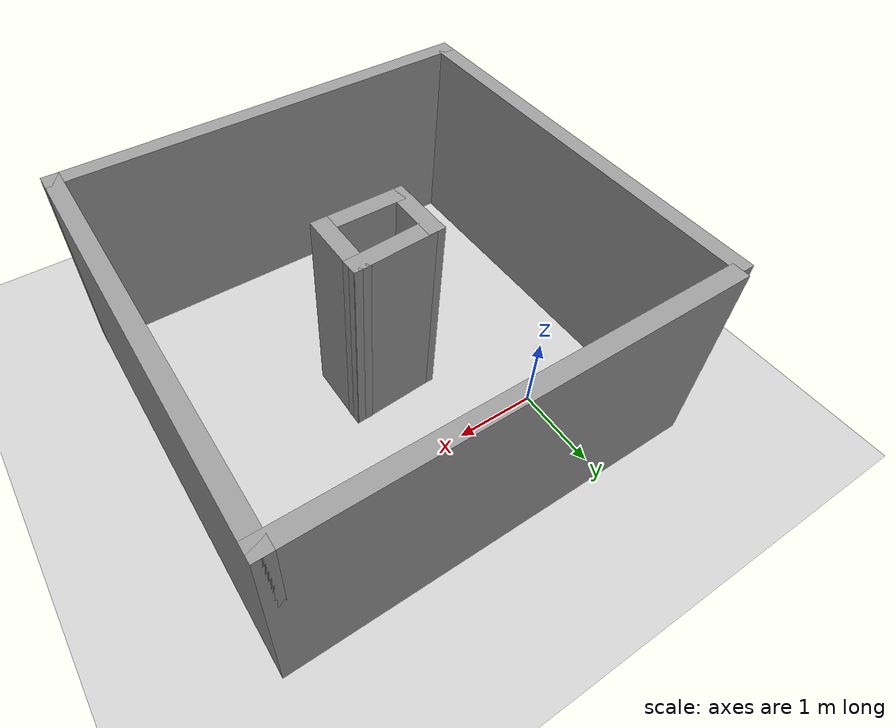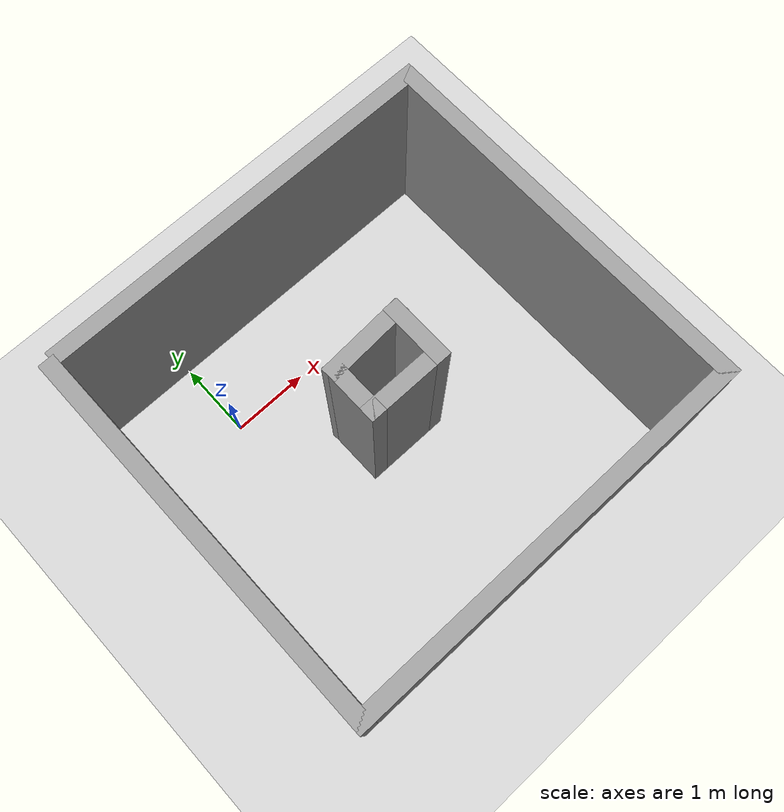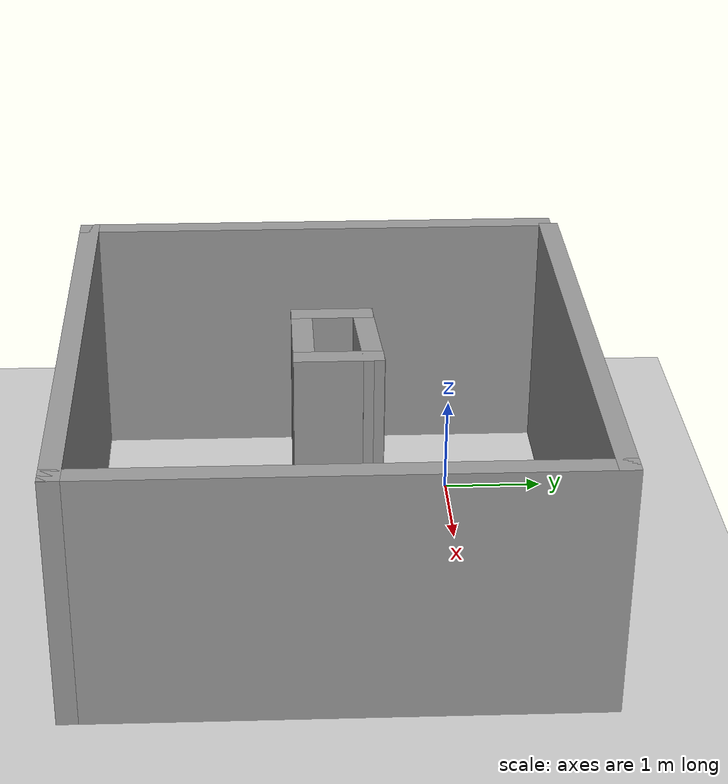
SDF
<sdf version="1.4">
 <world name="default">
  <light name="sun" type="directional">
   <pose>0 0 10 0 -0 0</pose>
   <diffuse>0.8 0.8 0.8 1</diffuse>
   <specular>0.2 0.2 0.2 1</specular>
   <attenuation>
    <range>1000</range>
    <constant>0.9</constant>
    <linear>0.01</linear>
    <quadratic>0.001</quadratic>
   </attenuation>
   <direction>-0.5 0.1 -0.9</direction>
  </light>
  <model name="ground_plane">
   <static>1</static>
   <link name="link">
    <collision name="collision">
     <geometry><plane><normal>0 0 1</normal><size>100 100</size></plane></geometry>
     <surface><friction><ode><mu>100</mu><mu2>50</mu2></ode></friction></surface>
    </collision>
    <visual name="visual">
     <cast_shadows>0</cast_shadows>
     <geometry><plane><normal>0 0 1</normal><size>100 100</size></plane></geometry>
     <material>
      <script><uri>file://media/materials/scripts/gazebo.material</uri><name>Gazebo/Grey</name></script>
     </material>
    </visual>
    <velocity_decay><linear>0</linear><angular>0</angular></velocity_decay>
   </link>
  </model>
  <physics type="ode">
   <max_step_size>0.001</max_step_size>
   <real_time_factor>1</real_time_factor>
   <real_time_update_rate>1000</real_time_update_rate>
   <gravity>0 0 -9.8</gravity>
  </physics>
  <scene><ambient>0.4 0.4 0.4 1</ambient><background>0.7 0.7 0.7 1</background><shadows>1</shadows></scene>
  <spherical_coordinates>
   <surface_model>EARTH_WGS84</surface_model>
   <latitude_deg>0</latitude_deg>
   <longitude_deg>0</longitude_deg>
   <elevation>0</elevation>
   <heading_deg>0</heading_deg>
  </spherical_coordinates>
  <model name="circularTrack">
   <link name="Wall_20">
    <collision name="Wall_20_Collision">
     <geometry><box><size>5.1687 0.2 2.5</size></box></geometry>
     <pose>0 0 1.25 0 -0 0</pose>
    </collision>
    <visual name="Wall_20_Visual">
     <pose>0 0 1.25 0 -0 0</pose>
     <geometry><box><size>5.1687 0.2 2.5</size></box></geometry>
     <material>
      <script><uri>file://media/materials/scripts/gazebo.material</uri><name>Gazebo/Grey</name></script>
     </material>
    </visual>
    <velocity_decay><linear>0</linear><angular>0</angular></velocity_decay>
    <pose>-2.60442 4.62548 0 0 -0 0</pose>
   </link>
   <link name="Wall_21">
    <collision name="Wall_21_Collision">
     <geometry><box><size>5.02674 0.2 2.5</size></box></geometry>
     <pose>0 0 1.25 0 -0 0</pose>
    </collision>
    <visual name="Wall_21_Visual">
     <pose>0 0 1.25 0 -0 0</pose>
     <geometry><box><size>5.02674 0.2 2.5</size></box></geometry>
     <material>
      <script><uri>file://media/materials/scripts/gazebo.material</uri><name>Gazebo/Grey</name></script>
     </material>
    </visual>
    <velocity_decay><linear>0</linear><angular>0</angular></velocity_decay>
    <pose>-0.120065 2.21211 0 0 0 -1.5708</pose>
   </link>
   <link name="Wall_22">
    <collision name="Wall_22_Collision">
     <geometry><box><size>5.31067 0.2 2.5</size></box></geometry>
     <pose>0 0 1.25 0 -0 0</pose>
    </collision>
    <visual name="Wall_22_Visual">
     <pose>0 0 1.25 0 -0 0</pose>
     <geometry><box><size>5.31067 0.2 2.5</size></box></geometry>
     <material>
      <script><uri>file://media/materials/scripts/gazebo.material</uri><name>Gazebo/Grey</name></script>
     </material>
    </visual>
    <velocity_decay><linear>0</linear><angular>0</angular></velocity_decay>
    <pose>-2.6754 -0.201262 0 0 -0 3.14159</pose>
   </link>
   <link name="Wall_23">
    <collision name="Wall_23_Collision">
     <geometry><box><size>4.95576 0.2 2.5</size></box></geometry>
     <pose>0 0 1.25 0 -0 0</pose>
    </collision>
    <visual name="Wall_23_Visual">
     <pose>0 0 1.25 0 -0 0</pose>
     <geometry><box><size>4.95576 0.2 2.5</size></box></geometry>
     <material>
      <script><uri>file://media/materials/scripts/gazebo.material</uri><name>Gazebo/Grey</name></script>
     </material>
    </visual>
    <velocity_decay><linear>0</linear><angular>0</angular></velocity_decay>
    <pose>-5.23073 2.17662 0 0 -0 1.5708</pose>
   </link>
   <link name="Wall_25">
    <collision name="Wall_25_Collision">
     <geometry><box><size>0.787061 0.2 2.5</size></box></geometry>
     <pose>0 0 1.25 0 -0 0</pose>
    </collision>
    <visual name="Wall_25_Visual">
     <pose>0 0 1.25 0 -0 0</pose>
     <geometry><box><size>0.787061 0.2 2.5</size></box></geometry>
     <material>
      <script><uri>file://media/materials/scripts/gazebo.material</uri><name>Gazebo/Grey</name></script>
     </material>
    </visual>
    <velocity_decay><linear>0</linear><angular>0</angular></velocity_decay>
    <pose>-3.09342 2.2601 0 0 0 -1.5708</pose>
   </link>
   <link name="Wall_26">
    <collision name="Wall_26_Collision">
     <geometry><box><size>1.10728 0.2 2.5</size></box></geometry>
     <pose>0 0 1.25 0 -0 0</pose>
    </collision>
    <visual name="Wall_26_Visual">
     <pose>0 0 1.25 0 -0 0</pose>
     <geometry><box><size>1.10728 0.2 2.5</size></box></geometry>
     <material>
      <script><uri>file://media/materials/scripts/gazebo.material</uri><name>Gazebo/Grey</name></script>
     </material>
    </visual>
    <velocity_decay><linear>0</linear><angular>0</angular></velocity_decay>
    <pose>-2.63978 1.96657 0 0 -0 0</pose>
   </link>
   <link name="Wall_27">
    <collision name="Wall_27_Collision">
     <geometry><box><size>0.84043 0.2 2.5</size></box></geometry>
     <pose>0 0 1.25 0 -0 0</pose>
    </collision>
    <visual name="Wall_27_Visual">
     <pose>0 0 1.25 0 -0 0</pose>
     <geometry><box><size>0.84043 0.2 2.5</size></box></geometry>
     <material>
      <script><uri>file://media/materials/scripts/gazebo.material</uri><name>Gazebo/Grey</name></script>
     </material>
    </visual>
    <velocity_decay><linear>0</linear><angular>0</angular></velocity_decay>
    <pose>-2.18614 2.28678 0 0 -0 1.5708</pose>
   </link>
   <link name="Wall_28">
    <collision name="Wall_28_Collision">
     <geometry><box><size>1.10884 0.2 2.5</size></box></geometry>
     <pose>0 0 1.25 0 -0 0</pose>
    </collision>
    <visual name="Wall_28_Visual">
     <pose>0 0 1.25 0 -0 0</pose>
     <geometry><box><size>1.10884 0.2 2.5</size></box></geometry>
     <material>
      <script><uri>file://media/materials/scripts/gazebo.material</uri><name>Gazebo/Grey</name></script>
     </material>
    </visual>
    <velocity_decay><linear>0</linear><angular>0</angular></velocity_decay>
    <pose>-2.63978 2.58031 0 0 0 -3.08284</pose>
   </link>
   <static>1</static>
   <pose>4 -3.50651 0 0 -0 0</pose>
  </model>
 </world>
</sdf>
